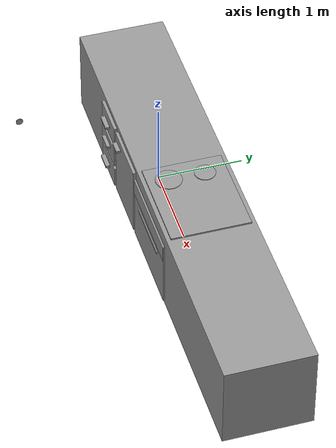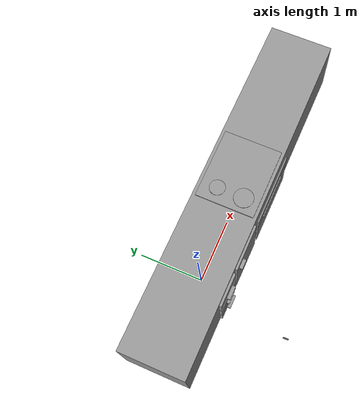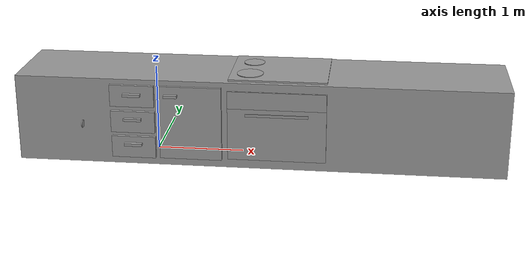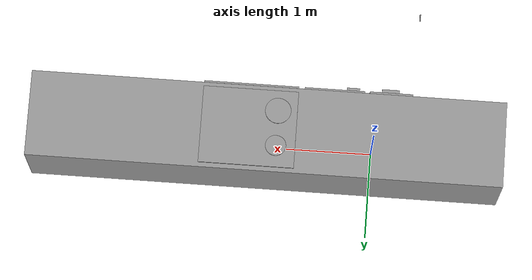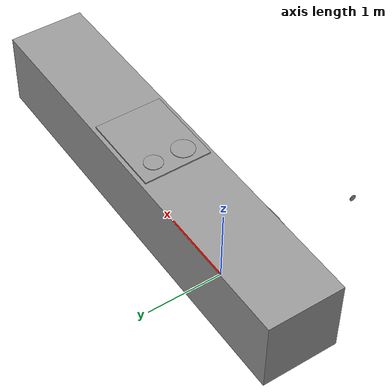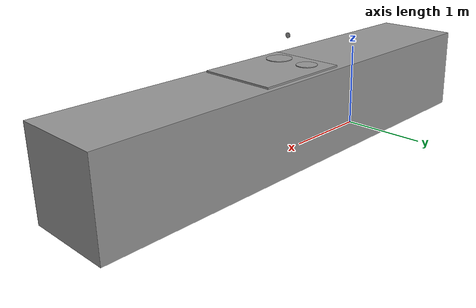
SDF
<sdf version="1.7">
 <model name="my_kitchen">
  <link name="link">
   <inertial>
    <mass>1</mass>
    <inertia>
     <ixx>0.166667</ixx>
     <ixy>0</ixy>
     <ixz>0</ixz>
     <iyy>0.166667</iyy>
     <iyz>0</iyz>
     <izz>0.166667</izz>
    </inertia>
   </inertial>
   <pose>1.23923 -0.000128 0 0 -0 0</pose>
   <visual name="visual">
    <geometry><box><size>5.5 1 1</size></box></geometry>
    <material>
     <script><name>Gazebo/Grey</name><uri>file://media/materials/scripts/gazebo.material</uri></script>
     <shader type="pixel"><normal_map>__default__</normal_map></shader>
     <ambient>0.8 0.8 0.8 1</ambient>
     <diffuse>0.65 0.65 0.65 1</diffuse>
     <specular>0.01 0.01 0.01 1</specular>
     <emissive>0 0 0 1</emissive>
    </material>
    <pose>0 0 0.5 0 -0 0</pose>
   </visual>
   <collision name="collision">
    <pose>0 0 0.5 0 -0 0</pose>
    <geometry><box><size>5.5 1 1</size></box></geometry>
    <surface>
     <friction>
      <ode><mu>1</mu><mu2>1</mu2><fdir1>0 0 0</fdir1><slip1>0</slip1><slip2>0</slip2></ode>
      <torsional>
       <coefficient>1</coefficient>
       <patch_radius>0</patch_radius>
       <surface_radius>0</surface_radius>
       <use_patch_radius>1</use_patch_radius>
       <ode><slip>0</slip></ode>
      </torsional>
     </friction>
     <bounce><restitution_coefficient>0</restitution_coefficient><threshold>1e+06</threshold></bounce>
     <contact>
      <collide_without_contact>0</collide_without_contact>
      <collide_without_contact_bitmask>1</collide_without_contact_bitmask>
      <collide_bitmask>1</collide_bitmask>
      <ode>
       <soft_cfm>0</soft_cfm>
       <soft_erp>0.2</soft_erp>
       <kp>1e+13</kp>
       <kd>1</kd>
       <max_vel>0.01</max_vel>
       <min_depth>0</min_depth>
      </ode>
      <bullet>
       <split_impulse>1</split_impulse>
       <split_impulse_penetration_threshold>-0.01</split_impulse_penetration_threshold>
       <soft_cfm>0</soft_cfm>
       <soft_erp>0.2</soft_erp>
       <kp>1e+13</kp>
       <kd>1</kd>
      </bullet>
     </contact>
    </surface>
   </collision>
  </link>
  <link name="link_0_0">
   <inertial>
    <mass>1</mass>
    <inertia><ixx>0.145833</ixx><ixy>0</ixy><ixz>0</ixz><iyy>0.145833</iyy><iyz>0</iyz><izz>0.125</izz></inertia>
   </inertial>
   <pose>1.11587 -0.213264 1.02593 0 -0 0</pose>
   <gravity>0</gravity>
   <visual name="visual">
    <geometry><cylinder><radius>0.15</radius><length>0.01</length></cylinder></geometry>
    <material>
     <lighting>1</lighting>
     <script><uri>file://media/materials/scripts/gazebo.material</uri><name>Gazebo/Grey</name></script>
     <shader type="pixel"><normal_map>__default__</normal_map></shader>
     <ambient>0.3 0.3 0.3 1</ambient>
     <diffuse>0.3 0.3 0.3 1</diffuse>
     <specular>0.01 0.01 0.01 1</specular>
     <emissive>0 0 0 1</emissive>
    </material>
   </visual>
   <collision name="collision">
    <geometry><cylinder><radius>0.15</radius><length>0.01</length></cylinder></geometry>
    <surface>
     <friction>
      <ode><mu>1</mu><mu2>1</mu2><fdir1>0 0 0</fdir1><slip1>0</slip1><slip2>0</slip2></ode>
      <torsional>
       <coefficient>1</coefficient>
       <patch_radius>0</patch_radius>
       <surface_radius>0</surface_radius>
       <use_patch_radius>1</use_patch_radius>
       <ode><slip>0</slip></ode>
      </torsional>
     </friction>
     <bounce><restitution_coefficient>0</restitution_coefficient><threshold>1e+06</threshold></bounce>
     <contact>
      <collide_without_contact>0</collide_without_contact>
      <collide_without_contact_bitmask>1</collide_without_contact_bitmask>
      <collide_bitmask>1</collide_bitmask>
      <ode>
       <soft_cfm>0</soft_cfm>
       <soft_erp>0.2</soft_erp>
       <kp>1e+13</kp>
       <kd>1</kd>
       <max_vel>0.01</max_vel>
       <min_depth>0</min_depth>
      </ode>
      <bullet>
       <split_impulse>1</split_impulse>
       <split_impulse_penetration_threshold>-0.01</split_impulse_penetration_threshold>
       <soft_cfm>0</soft_cfm>
       <soft_erp>0.2</soft_erp>
       <kp>1e+13</kp>
       <kd>1</kd>
      </bullet>
     </contact>
    </surface>
   </collision>
  </link>
  <link name="link_0_0_clone">
   <inertial>
    <mass>1</mass>
    <inertia><ixx>0.145833</ixx><ixy>0</ixy><ixz>0</ixz><iyy>0.145833</iyy><iyz>0</iyz><izz>0.125</izz></inertia>
   </inertial>
   <pose>1.11788 0.197131 1.02593 0 -0 0</pose>
   <gravity>0</gravity>
   <visual name="visual">
    <geometry><cylinder><radius>0.12</radius><length>0.01</length></cylinder></geometry>
    <material>
     <lighting>1</lighting>
     <script><uri>file://media/materials/scripts/gazebo.material</uri><name>Gazebo/Grey</name></script>
     <shader type="pixel"><normal_map>__default__</normal_map></shader>
     <ambient>0.3 0.3 0.3 1</ambient>
     <diffuse>0.3 0.3 0.3 1</diffuse>
     <specular>0.01 0.01 0.01 1</specular>
     <emissive>0 0 0 1</emissive>
    </material>
   </visual>
   <collision name="collision">
    <geometry><cylinder><radius>0.12</radius><length>0.01</length></cylinder></geometry>
    <surface>
     <friction>
      <ode><mu>1</mu><mu2>1</mu2><fdir1>0 0 0</fdir1><slip1>0</slip1><slip2>0</slip2></ode>
      <torsional>
       <coefficient>1</coefficient>
       <patch_radius>0</patch_radius>
       <surface_radius>0</surface_radius>
       <use_patch_radius>1</use_patch_radius>
       <ode><slip>0</slip></ode>
      </torsional>
     </friction>
     <bounce><restitution_coefficient>0</restitution_coefficient><threshold>1e+06</threshold></bounce>
     <contact>
      <collide_without_contact>0</collide_without_contact>
      <collide_without_contact_bitmask>1</collide_without_contact_bitmask>
      <collide_bitmask>1</collide_bitmask>
      <ode>
       <soft_cfm>0</soft_cfm>
       <soft_erp>0.2</soft_erp>
       <kp>1e+13</kp>
       <kd>1</kd>
       <max_vel>0.01</max_vel>
       <min_depth>0</min_depth>
      </ode>
      <bullet>
       <split_impulse>1</split_impulse>
       <split_impulse_penetration_threshold>-0.01</split_impulse_penetration_threshold>
       <soft_cfm>0</soft_cfm>
       <soft_erp>0.2</soft_erp>
       <kp>1e+13</kp>
       <kd>1</kd>
      </bullet>
     </contact>
    </surface>
   </collision>
  </link>
  <link name="link_0_clone_0">
   <inertial>
    <mass>1</mass>
    <inertia><ixx>0.145833</ixx><ixy>0</ixy><ixz>0</ixz><iyy>0.145833</iyy><iyz>0</iyz><izz>0.125</izz></inertia>
   </inertial>
   <pose>-0.459347 -1.48795 0.840731 0 -0 0</pose>
   <visual name="visual">
    <pose>0 0 0 0 1.5707 0</pose>
    <geometry><cylinder><radius>0.04</radius><length>0.01</length></cylinder></geometry>
    <material>
     <lighting>1</lighting>
     <script><uri>file://media/materials/scripts/gazebo.material</uri><name>Gazebo/Grey</name></script>
     <shader type="pixel"><normal_map>__default__</normal_map></shader>
     <ambient>0.9 0.9 0.9 1</ambient>
     <diffuse>0.9 0.9 0.9 1</diffuse>
     <specular>0.01 0.01 0.01 1</specular>
     <emissive>0 0 0 1</emissive>
    </material>
   </visual>
   <collision name="collision">
    <pose>0 0 0 0 1.5707 0</pose>
    <geometry><cylinder><radius>0.04</radius><length>0.01</length></cylinder></geometry>
    <surface>
     <friction>
      <ode><mu>1</mu><mu2>1</mu2><fdir1>0 0 0</fdir1><slip1>0</slip1><slip2>0</slip2></ode>
      <torsional>
       <coefficient>1</coefficient>
       <patch_radius>0</patch_radius>
       <surface_radius>0</surface_radius>
       <use_patch_radius>1</use_patch_radius>
       <ode><slip>0</slip></ode>
      </torsional>
     </friction>
     <bounce><restitution_coefficient>0</restitution_coefficient><threshold>1e+06</threshold></bounce>
     <contact>
      <collide_without_contact>0</collide_without_contact>
      <collide_without_contact_bitmask>1</collide_without_contact_bitmask>
      <collide_bitmask>1</collide_bitmask>
      <ode>
       <soft_cfm>0</soft_cfm>
       <soft_erp>0.2</soft_erp>
       <kp>1e+13</kp>
       <kd>1</kd>
       <max_vel>0.01</max_vel>
       <min_depth>0</min_depth>
      </ode>
      <bullet>
       <split_impulse>1</split_impulse>
       <split_impulse_penetration_threshold>-0.01</split_impulse_penetration_threshold>
       <soft_cfm>0</soft_cfm>
       <soft_erp>0.2</soft_erp>
       <kp>1e+13</kp>
       <kd>1</kd>
      </bullet>
     </contact>
    </surface>
   </collision>
  </link>
  <link name="link_clone_0">
   <inertial>
    <mass>1</mass>
    <inertia>
     <ixx>0.166667</ixx>
     <ixy>0</ixy>
     <ixz>0</ixz>
     <iyy>0.166667</iyy>
     <iyz>0</iyz>
     <izz>0.166667</izz>
    </inertia>
   </inertial>
   <pose>1.44437 -0.002505 0.513121 0 -0 0</pose>
   <gravity>0</gravity>
   <visual name="visual">
    <geometry><box><size>1.1 0.9 0.02</size></box></geometry>
    <material>
     <script><name>Gazebo/Grey</name><uri>file://media/materials/scripts/gazebo.material</uri></script>
     <shader type="pixel"><normal_map>__default__</normal_map></shader>
     <ambient>0.2 0.2 0.2 1</ambient>
     <diffuse>0.2 0.2 0.2 1</diffuse>
     <specular>0.01 0.01 0.01 1</specular>
     <emissive>0 0 0 1</emissive>
    </material>
    <pose>0 0 0.5 0 -0 0</pose>
   </visual>
   <collision name="collision">
    <pose>0 0 0.5 0 -0 0</pose>
    <geometry><box><size>1.1 0.9 0.02</size></box></geometry>
    <surface>
     <friction>
      <ode><mu>1</mu><mu2>1</mu2><fdir1>0 0 0</fdir1><slip1>0</slip1><slip2>0</slip2></ode>
      <torsional>
       <coefficient>1</coefficient>
       <patch_radius>0</patch_radius>
       <surface_radius>0</surface_radius>
       <use_patch_radius>1</use_patch_radius>
       <ode><slip>0</slip></ode>
      </torsional>
     </friction>
     <bounce><restitution_coefficient>0</restitution_coefficient><threshold>1e+06</threshold></bounce>
     <contact>
      <collide_without_contact>0</collide_without_contact>
      <collide_without_contact_bitmask>1</collide_without_contact_bitmask>
      <collide_bitmask>1</collide_bitmask>
      <ode>
       <soft_cfm>0</soft_cfm>
       <soft_erp>0.2</soft_erp>
       <kp>1e+13</kp>
       <kd>1</kd>
       <max_vel>0.01</max_vel>
       <min_depth>0</min_depth>
      </ode>
      <bullet>
       <split_impulse>1</split_impulse>
       <split_impulse_penetration_threshold>-0.01</split_impulse_penetration_threshold>
       <soft_cfm>0</soft_cfm>
       <soft_erp>0.2</soft_erp>
       <kp>1e+13</kp>
       <kd>1</kd>
      </bullet>
     </contact>
    </surface>
   </collision>
  </link>
  <link name="link_clone_0_clone_0">
   <inertial>
    <mass>1</mass>
    <inertia>
     <ixx>0.166667</ixx>
     <ixy>0</ixy>
     <ixz>0</ixz>
     <iyy>0.166667</iyy>
     <iyz>0</iyz>
     <izz>0.166667</izz>
    </inertia>
   </inertial>
   <pose>1.44476 -0.529129 0.013848 0 -0 0</pose>
   <visual name="visual">
    <geometry><box><size>1.1 0.8 0.02</size></box></geometry>
    <material>
     <script><name>Gazebo/Grey</name><uri>file://media/materials/scripts/gazebo.material</uri></script>
     <shader type="pixel"><normal_map>__default__</normal_map></shader>
     <ambient>0.2 0.2 0.2 1</ambient>
     <diffuse>0.2 0.2 0.2 1</diffuse>
     <specular>0.01 0.01 0.01 1</specular>
     <emissive>0 0 0 1</emissive>
    </material>
    <pose>0 0 0.5 1.5707 -0 0</pose>
   </visual>
   <collision name="collision">
    <pose>0 0 0.5 1.5707 -0 0</pose>
    <geometry><box><size>1.1 0.8 0.02</size></box></geometry>
    <surface>
     <friction>
      <ode><mu>1</mu><mu2>1</mu2><fdir1>0 0 0</fdir1><slip1>0</slip1><slip2>0</slip2></ode>
      <torsional>
       <coefficient>1</coefficient>
       <patch_radius>0</patch_radius>
       <surface_radius>0</surface_radius>
       <use_patch_radius>1</use_patch_radius>
       <ode><slip>0</slip></ode>
      </torsional>
     </friction>
     <bounce><restitution_coefficient>0</restitution_coefficient><threshold>1e+06</threshold></bounce>
     <contact>
      <collide_without_contact>0</collide_without_contact>
      <collide_without_contact_bitmask>1</collide_without_contact_bitmask>
      <collide_bitmask>1</collide_bitmask>
      <ode>
       <soft_cfm>0</soft_cfm>
       <soft_erp>0.2</soft_erp>
       <kp>1e+13</kp>
       <kd>1</kd>
       <max_vel>0.01</max_vel>
       <min_depth>0</min_depth>
      </ode>
      <bullet>
       <split_impulse>1</split_impulse>
       <split_impulse_penetration_threshold>-0.01</split_impulse_penetration_threshold>
       <soft_cfm>0</soft_cfm>
       <soft_erp>0.2</soft_erp>
       <kp>1e+13</kp>
       <kd>1</kd>
      </bullet>
     </contact>
    </surface>
   </collision>
  </link>
  <link name="link_clone_0_clone_0_clone">
   <inertial>
    <mass>1</mass>
    <inertia>
     <ixx>0.166667</ixx>
     <ixy>0</ixy>
     <ixz>0</ixz>
     <iyy>0.166667</iyy>
     <iyz>0</iyz>
     <izz>0.166667</izz>
    </inertia>
   </inertial>
   <pose>1.44317 -0.53222 0.313912 0 -0 0</pose>
   <visual name="visual">
    <geometry><box><size>1.1 0.2 0.02</size></box></geometry>
    <material>
     <script><name>Gazebo/Grey</name><uri>file://media/materials/scripts/gazebo.material</uri></script>
     <shader type="pixel"><normal_map>__default__</normal_map></shader>
     <ambient>0.4 0.4 0.4 1</ambient>
     <diffuse>0.4 0.4 0.4 1</diffuse>
     <specular>0.01 0.01 0.01 1</specular>
     <emissive>0 0 0 1</emissive>
    </material>
    <pose>0 0 0.5 1.5707 -0 0</pose>
   </visual>
   <collision name="collision">
    <pose>0 0 0.5 1.5707 -0 0</pose>
    <geometry><box><size>1.1 0.2 0.02</size></box></geometry>
    <surface>
     <friction>
      <ode><mu>1</mu><mu2>1</mu2><fdir1>0 0 0</fdir1><slip1>0</slip1><slip2>0</slip2></ode>
      <torsional>
       <coefficient>1</coefficient>
       <patch_radius>0</patch_radius>
       <surface_radius>0</surface_radius>
       <use_patch_radius>1</use_patch_radius>
       <ode><slip>0</slip></ode>
      </torsional>
     </friction>
     <bounce><restitution_coefficient>0</restitution_coefficient><threshold>1e+06</threshold></bounce>
     <contact>
      <collide_without_contact>0</collide_without_contact>
      <collide_without_contact_bitmask>1</collide_without_contact_bitmask>
      <collide_bitmask>1</collide_bitmask>
      <ode>
       <soft_cfm>0</soft_cfm>
       <soft_erp>0.2</soft_erp>
       <kp>1e+13</kp>
       <kd>1</kd>
       <max_vel>0.01</max_vel>
       <min_depth>0</min_depth>
      </ode>
      <bullet>
       <split_impulse>1</split_impulse>
       <split_impulse_penetration_threshold>-0.01</split_impulse_penetration_threshold>
       <soft_cfm>0</soft_cfm>
       <soft_erp>0.2</soft_erp>
       <kp>1e+13</kp>
       <kd>1</kd>
      </bullet>
     </contact>
    </surface>
   </collision>
  </link>
  <link name="link_clone_0_clone_0_clone_clone">
   <inertial>
    <mass>1</mass>
    <inertia>
     <ixx>0.166667</ixx>
     <ixy>0</ixy>
     <ixz>0</ixz>
     <iyy>0.166667</iyy>
     <iyz>0</iyz>
     <izz>0.166667</izz>
    </inertia>
   </inertial>
   <pose>1.44437 -0.543751 0.146791 0 -0 0</pose>
   <gravity>0</gravity>
   <visual name="visual">
    <geometry><box><size>0.7 0.03 0.02</size></box></geometry>
    <material>
     <script><name>Gazebo/Grey</name><uri>file://media/materials/scripts/gazebo.material</uri></script>
     <shader type="pixel"><normal_map>__default__</normal_map></shader>
     <ambient>0.9 0.9 0.9 1</ambient>
     <diffuse>0.9 0.9 0.9 1</diffuse>
     <specular>0.01 0.01 0.01 1</specular>
     <emissive>0 0 0 1</emissive>
    </material>
    <pose>0 0 0.5 1.5707 -0 0</pose>
   </visual>
   <collision name="collision">
    <pose>0 0 0.5 1.5707 -0 0</pose>
    <geometry><box><size>0.7 0.03 0.02</size></box></geometry>
    <surface>
     <friction>
      <ode><mu>1</mu><mu2>1</mu2><fdir1>0 0 0</fdir1><slip1>0</slip1><slip2>0</slip2></ode>
      <torsional>
       <coefficient>1</coefficient>
       <patch_radius>0</patch_radius>
       <surface_radius>0</surface_radius>
       <use_patch_radius>1</use_patch_radius>
       <ode><slip>0</slip></ode>
      </torsional>
     </friction>
     <bounce><restitution_coefficient>0</restitution_coefficient><threshold>1e+06</threshold></bounce>
     <contact>
      <collide_without_contact>0</collide_without_contact>
      <collide_without_contact_bitmask>1</collide_without_contact_bitmask>
      <collide_bitmask>1</collide_bitmask>
      <ode>
       <soft_cfm>0</soft_cfm>
       <soft_erp>0.2</soft_erp>
       <kp>1e+13</kp>
       <kd>1</kd>
       <max_vel>0.01</max_vel>
       <min_depth>0</min_depth>
      </ode>
      <bullet>
       <split_impulse>1</split_impulse>
       <split_impulse_penetration_threshold>-0.01</split_impulse_penetration_threshold>
       <soft_cfm>0</soft_cfm>
       <soft_erp>0.2</soft_erp>
       <kp>1e+13</kp>
       <kd>1</kd>
      </bullet>
     </contact>
    </surface>
   </collision>
  </link>
  <link name="link_clone_clone_clone_0_clone_clone_clone_0_clone_clone_clone_0_clone_0">
   <inertial>
    <mass>1</mass>
    <inertia>
     <ixx>0.166667</ixx>
     <ixy>0</ixy>
     <ixz>0</ixz>
     <iyy>0.166667</iyy>
     <iyz>0</iyz>
     <izz>0.166667</izz>
    </inertia>
   </inertial>
   <pose>-0.174147 -0.517268 0.010923 0 -0 0</pose>
   <gravity>0</gravity>
   <visual name="visual">
    <geometry><box><size>0.05 0.5 0.25</size></box></geometry>
    <material>
     <script><name>Gazebo/Grey</name><uri>file://media/materials/scripts/gazebo.material</uri></script>
     <shader type="pixel"><normal_map>__default__</normal_map></shader>
     <ambient>0.4 0.4 0.4 1</ambient>
     <diffuse>0.4 0.4 0.4 1</diffuse>
     <specular>0.01 0.01 0.01 1</specular>
     <emissive>0 0 0 1</emissive>
    </material>
    <pose>0 0 0.5 0 -0 1.5707</pose>
   </visual>
   <collision name="collision">
    <pose>0 0 0.5 0 -0 1.5707</pose>
    <geometry><box><size>0.05 0.5 0.25</size></box></geometry>
    <surface>
     <friction>
      <ode><mu>1</mu><mu2>1</mu2><fdir1>0 0 0</fdir1><slip1>0</slip1><slip2>0</slip2></ode>
      <torsional>
       <coefficient>1</coefficient>
       <patch_radius>0</patch_radius>
       <surface_radius>0</surface_radius>
       <use_patch_radius>1</use_patch_radius>
       <ode><slip>0</slip></ode>
      </torsional>
     </friction>
     <bounce><restitution_coefficient>0</restitution_coefficient><threshold>1e+06</threshold></bounce>
     <contact>
      <collide_without_contact>0</collide_without_contact>
      <collide_without_contact_bitmask>1</collide_without_contact_bitmask>
      <collide_bitmask>1</collide_bitmask>
      <ode>
       <soft_cfm>0</soft_cfm>
       <soft_erp>0.2</soft_erp>
       <kp>1e+13</kp>
       <kd>1</kd>
       <max_vel>0.01</max_vel>
       <min_depth>0</min_depth>
      </ode>
      <bullet>
       <split_impulse>1</split_impulse>
       <split_impulse_penetration_threshold>-0.01</split_impulse_penetration_threshold>
       <soft_cfm>0</soft_cfm>
       <soft_erp>0.2</soft_erp>
       <kp>1e+13</kp>
       <kd>1</kd>
      </bullet>
     </contact>
    </surface>
   </collision>
  </link>
  <link name="link_clone_clone_clone_0_clone_clone_clone_0_clone_clone_clone_0_clone_0_clone">
   <inertial>
    <mass>1</mass>
    <inertia>
     <ixx>0.166667</ixx>
     <ixy>0</ixy>
     <ixz>0</ixz>
     <iyy>0.166667</iyy>
     <iyz>0</iyz>
     <izz>0.166667</izz>
    </inertia>
   </inertial>
   <pose>-0.172613 -0.514864 -0.287733 0 -0 0</pose>
   <visual name="visual">
    <geometry><box><size>0.05 0.5 0.25</size></box></geometry>
    <material>
     <script><name>Gazebo/Grey</name><uri>file://media/materials/scripts/gazebo.material</uri></script>
     <shader type="pixel"><normal_map>__default__</normal_map></shader>
     <ambient>0.4 0.4 0.4 1</ambient>
     <diffuse>0.4 0.4 0.4 1</diffuse>
     <specular>0.01 0.01 0.01 1</specular>
     <emissive>0 0 0 1</emissive>
    </material>
    <pose>0 0 0.5 0 -0 1.5707</pose>
   </visual>
   <collision name="collision">
    <pose>0 0 0.5 0 -0 1.5707</pose>
    <geometry><box><size>0.05 0.5 0.25</size></box></geometry>
    <surface>
     <friction>
      <ode><mu>1</mu><mu2>1</mu2><fdir1>0 0 0</fdir1><slip1>0</slip1><slip2>0</slip2></ode>
      <torsional>
       <coefficient>1</coefficient>
       <patch_radius>0</patch_radius>
       <surface_radius>0</surface_radius>
       <use_patch_radius>1</use_patch_radius>
       <ode><slip>0</slip></ode>
      </torsional>
     </friction>
     <bounce><restitution_coefficient>0</restitution_coefficient><threshold>1e+06</threshold></bounce>
     <contact>
      <collide_without_contact>0</collide_without_contact>
      <collide_without_contact_bitmask>1</collide_without_contact_bitmask>
      <collide_bitmask>1</collide_bitmask>
      <ode>
       <soft_cfm>0</soft_cfm>
       <soft_erp>0.2</soft_erp>
       <kp>1e+13</kp>
       <kd>1</kd>
       <max_vel>0.01</max_vel>
       <min_depth>0</min_depth>
      </ode>
      <bullet>
       <split_impulse>1</split_impulse>
       <split_impulse_penetration_threshold>-0.01</split_impulse_penetration_threshold>
       <soft_cfm>0</soft_cfm>
       <soft_erp>0.2</soft_erp>
       <kp>1e+13</kp>
       <kd>1</kd>
      </bullet>
     </contact>
    </surface>
   </collision>
  </link>
  <link name="link_clone_clone_clone_0_clone_clone_clone_0_clone_clone_clone_0_clone_0_clone_0">
   <inertial>
    <mass>1</mass>
    <inertia>
     <ixx>0.166667</ixx>
     <ixy>0</ixy>
     <ixz>0</ixz>
     <iyy>0.166667</iyy>
     <iyz>0</iyz>
     <izz>0.166667</izz>
    </inertia>
   </inertial>
   <pose>-0.177001 -0.511923 0.314755 0 -0 0</pose>
   <visual name="visual">
    <geometry><box><size>0.05 0.5 0.25</size></box></geometry>
    <material>
     <script><name>Gazebo/Grey</name><uri>file://media/materials/scripts/gazebo.material</uri></script>
     <shader type="pixel"><normal_map>__default__</normal_map></shader>
     <ambient>0.4 0.4 0.4 1</ambient>
     <diffuse>0.4 0.4 0.4 1</diffuse>
     <specular>0.01 0.01 0.01 1</specular>
     <emissive>0 0 0 1</emissive>
    </material>
    <pose>0 0 0.5 0 -0 1.5707</pose>
   </visual>
   <collision name="collision">
    <pose>0 0 0.5 0 -0 1.5707</pose>
    <geometry><box><size>0.05 0.5 0.25</size></box></geometry>
    <surface>
     <friction>
      <ode><mu>1</mu><mu2>1</mu2><fdir1>0 0 0</fdir1><slip1>0</slip1><slip2>0</slip2></ode>
      <torsional>
       <coefficient>1</coefficient>
       <patch_radius>0</patch_radius>
       <surface_radius>0</surface_radius>
       <use_patch_radius>1</use_patch_radius>
       <ode><slip>0</slip></ode>
      </torsional>
     </friction>
     <bounce><restitution_coefficient>0</restitution_coefficient><threshold>1e+06</threshold></bounce>
     <contact>
      <collide_without_contact>0</collide_without_contact>
      <collide_without_contact_bitmask>1</collide_without_contact_bitmask>
      <collide_bitmask>1</collide_bitmask>
      <ode>
       <soft_cfm>0</soft_cfm>
       <soft_erp>0.2</soft_erp>
       <kp>1e+13</kp>
       <kd>1</kd>
       <max_vel>0.01</max_vel>
       <min_depth>0</min_depth>
      </ode>
      <bullet>
       <split_impulse>1</split_impulse>
       <split_impulse_penetration_threshold>-0.01</split_impulse_penetration_threshold>
       <soft_cfm>0</soft_cfm>
       <soft_erp>0.2</soft_erp>
       <kp>1e+13</kp>
       <kd>1</kd>
      </bullet>
     </contact>
    </surface>
   </collision>
  </link>
  <link name="link_clone_clone_clone_0_clone_clone_clone_0_clone_clone_clone_clone">
   <inertial>
    <mass>1</mass>
    <inertia>
     <ixx>0.166667</ixx>
     <ixy>0</ixy>
     <ixz>0</ixz>
     <iyy>0.166667</iyy>
     <iyz>0</iyz>
     <izz>0.166667</izz>
    </inertia>
   </inertial>
   <pose>0.477669 -0.509689 0.016041 0 -0 0</pose>
   <gravity>0</gravity>
   <visual name="visual">
    <geometry><box><size>0.05 0.7 0.85</size></box></geometry>
    <material>
     <script><name>Gazebo/Grey</name><uri>file://media/materials/scripts/gazebo.material</uri></script>
     <shader type="pixel"><normal_map>__default__</normal_map></shader>
     <ambient>0.4 0.4 0.4 1</ambient>
     <diffuse>0.4 0.4 0.4 1</diffuse>
     <specular>0.01 0.01 0.01 1</specular>
     <emissive>0 0 0 1</emissive>
    </material>
    <pose>0 0 0.5 0 -0 1.5707</pose>
   </visual>
   <collision name="collision">
    <pose>0 0 0.5 0 -0 1.5707</pose>
    <geometry><box><size>0.05 0.7 0.85</size></box></geometry>
    <surface>
     <friction>
      <ode><mu>1</mu><mu2>1</mu2><fdir1>0 0 0</fdir1><slip1>0</slip1><slip2>0</slip2></ode>
      <torsional>
       <coefficient>1</coefficient>
       <patch_radius>0</patch_radius>
       <surface_radius>0</surface_radius>
       <use_patch_radius>1</use_patch_radius>
       <ode><slip>0</slip></ode>
      </torsional>
     </friction>
     <bounce><restitution_coefficient>0</restitution_coefficient><threshold>1e+06</threshold></bounce>
     <contact>
      <collide_without_contact>0</collide_without_contact>
      <collide_without_contact_bitmask>1</collide_without_contact_bitmask>
      <collide_bitmask>1</collide_bitmask>
      <ode>
       <soft_cfm>0</soft_cfm>
       <soft_erp>0.2</soft_erp>
       <kp>1e+13</kp>
       <kd>1</kd>
       <max_vel>0.01</max_vel>
       <min_depth>0</min_depth>
      </ode>
      <bullet>
       <split_impulse>1</split_impulse>
       <split_impulse_penetration_threshold>-0.01</split_impulse_penetration_threshold>
       <soft_cfm>0</soft_cfm>
       <soft_erp>0.2</soft_erp>
       <kp>1e+13</kp>
       <kd>1</kd>
      </bullet>
     </contact>
    </surface>
   </collision>
  </link>
  <link name="link_clone_clone_clone_0_clone_clone_clone_clone_1_clone_0">
   <inertial>
    <mass>1</mass>
    <inertia>
     <ixx>0.166667</ixx>
     <ixy>0</ixy>
     <ixz>0</ixz>
     <iyy>0.166667</iyy>
     <iyz>0</iyz>
     <izz>0.166667</izz>
    </inertia>
   </inertial>
   <pose>0.264715 -0.561956 0.338029 0 -0 0</pose>
   <gravity>0</gravity>
   <visual name="visual">
    <geometry><box><size>0.05 0.15 0.03</size></box></geometry>
    <material>
     <script><name>Gazebo/Grey</name><uri>file://media/materials/scripts/gazebo.material</uri></script>
     <shader type="pixel"><normal_map>__default__</normal_map></shader>
     <ambient>0.9 0.9 0.9 1</ambient>
     <diffuse>0.8 0.8 0.8 1</diffuse>
     <specular>0.01 0.01 0.01 1</specular>
     <emissive>0 0 0 1</emissive>
    </material>
    <pose>0 0 0.5 0 -0 1.5707</pose>
   </visual>
   <collision name="collision">
    <pose>0 0 0.5 0 -0 1.5707</pose>
    <geometry><box><size>0.05 0.15 0.03</size></box></geometry>
    <surface>
     <friction>
      <ode><mu>1</mu><mu2>1</mu2><fdir1>0 0 0</fdir1><slip1>0</slip1><slip2>0</slip2></ode>
      <torsional>
       <coefficient>1</coefficient>
       <patch_radius>0</patch_radius>
       <surface_radius>0</surface_radius>
       <use_patch_radius>1</use_patch_radius>
       <ode><slip>0</slip></ode>
      </torsional>
     </friction>
     <bounce><restitution_coefficient>0</restitution_coefficient><threshold>1e+06</threshold></bounce>
     <contact>
      <collide_without_contact>0</collide_without_contact>
      <collide_without_contact_bitmask>1</collide_without_contact_bitmask>
      <collide_bitmask>1</collide_bitmask>
      <ode>
       <soft_cfm>0</soft_cfm>
       <soft_erp>0.2</soft_erp>
       <kp>1e+13</kp>
       <kd>1</kd>
       <max_vel>0.01</max_vel>
       <min_depth>0</min_depth>
      </ode>
      <bullet>
       <split_impulse>1</split_impulse>
       <split_impulse_penetration_threshold>-0.01</split_impulse_penetration_threshold>
       <soft_cfm>0</soft_cfm>
       <soft_erp>0.2</soft_erp>
       <kp>1e+13</kp>
       <kd>1</kd>
      </bullet>
     </contact>
    </surface>
   </collision>
  </link>
  <link name="link_clone_clone_clone_0_clone_clone_clone_clone_1_clone_0_clone">
   <inertial>
    <mass>1</mass>
    <inertia>
     <ixx>0.166667</ixx>
     <ixy>0</ixy>
     <ixz>0</ixz>
     <iyy>0.166667</iyy>
     <iyz>0</iyz>
     <izz>0.166667</izz>
    </inertia>
   </inertial>
   <pose>-0.172178 -0.559644 0.047956 0 -0 0</pose>
   <gravity>0</gravity>
   <visual name="visual">
    <geometry><box><size>0.05 0.2 0.03</size></box></geometry>
    <material>
     <script><name>Gazebo/Grey</name><uri>file://media/materials/scripts/gazebo.material</uri></script>
     <shader type="pixel"><normal_map>__default__</normal_map></shader>
     <ambient>0.9 0.9 0.9 1</ambient>
     <diffuse>0.8 0.8 0.8 1</diffuse>
     <specular>0.01 0.01 0.01 1</specular>
     <emissive>0 0 0 1</emissive>
    </material>
    <pose>0 0 0.5 0 -0 1.5707</pose>
   </visual>
   <collision name="collision">
    <pose>0 0 0.5 0 -0 1.5707</pose>
    <geometry><box><size>0.05 0.2 0.03</size></box></geometry>
    <surface>
     <friction>
      <ode><mu>1</mu><mu2>1</mu2><fdir1>0 0 0</fdir1><slip1>0</slip1><slip2>0</slip2></ode>
      <torsional>
       <coefficient>1</coefficient>
       <patch_radius>0</patch_radius>
       <surface_radius>0</surface_radius>
       <use_patch_radius>1</use_patch_radius>
       <ode><slip>0</slip></ode>
      </torsional>
     </friction>
     <bounce><restitution_coefficient>0</restitution_coefficient><threshold>1e+06</threshold></bounce>
     <contact>
      <collide_without_contact>0</collide_without_contact>
      <collide_without_contact_bitmask>1</collide_without_contact_bitmask>
      <collide_bitmask>1</collide_bitmask>
      <ode>
       <soft_cfm>0</soft_cfm>
       <soft_erp>0.2</soft_erp>
       <kp>1e+13</kp>
       <kd>1</kd>
       <max_vel>0.01</max_vel>
       <min_depth>0</min_depth>
      </ode>
      <bullet>
       <split_impulse>1</split_impulse>
       <split_impulse_penetration_threshold>-0.01</split_impulse_penetration_threshold>
       <soft_cfm>0</soft_cfm>
       <soft_erp>0.2</soft_erp>
       <kp>1e+13</kp>
       <kd>1</kd>
      </bullet>
     </contact>
    </surface>
   </collision>
  </link>
  <link name="link_clone_clone_clone_0_clone_clone_clone_clone_1_clone_0_clone_clone">
   <inertial>
    <mass>1</mass>
    <inertia>
     <ixx>0.166667</ixx>
     <ixy>0</ixy>
     <ixz>0</ixz>
     <iyy>0.166667</iyy>
     <iyz>0</iyz>
     <izz>0.166667</izz>
    </inertia>
   </inertial>
   <pose>-0.171122 -0.571169 0.338029 0 -0 0</pose>
   <gravity>0</gravity>
   <visual name="visual">
    <geometry><box><size>0.05 0.2 0.03</size></box></geometry>
    <material>
     <script><name>Gazebo/Grey</name><uri>file://media/materials/scripts/gazebo.material</uri></script>
     <shader type="pixel"><normal_map>__default__</normal_map></shader>
     <ambient>0.9 0.9 0.9 1</ambient>
     <diffuse>0.8 0.8 0.8 1</diffuse>
     <specular>0.01 0.01 0.01 1</specular>
     <emissive>0 0 0 1</emissive>
    </material>
    <pose>0 0 0.5 0 -0 1.5707</pose>
   </visual>
   <collision name="collision">
    <pose>0 0 0.5 0 -0 1.5707</pose>
    <geometry><box><size>0.05 0.2 0.03</size></box></geometry>
    <surface>
     <friction>
      <ode><mu>1</mu><mu2>1</mu2><fdir1>0 0 0</fdir1><slip1>0</slip1><slip2>0</slip2></ode>
      <torsional>
       <coefficient>1</coefficient>
       <patch_radius>0</patch_radius>
       <surface_radius>0</surface_radius>
       <use_patch_radius>1</use_patch_radius>
       <ode><slip>0</slip></ode>
      </torsional>
     </friction>
     <bounce><restitution_coefficient>0</restitution_coefficient><threshold>1e+06</threshold></bounce>
     <contact>
      <collide_without_contact>0</collide_without_contact>
      <collide_without_contact_bitmask>1</collide_without_contact_bitmask>
      <collide_bitmask>1</collide_bitmask>
      <ode>
       <soft_cfm>0</soft_cfm>
       <soft_erp>0.2</soft_erp>
       <kp>1e+13</kp>
       <kd>1</kd>
       <max_vel>0.01</max_vel>
       <min_depth>0</min_depth>
      </ode>
      <bullet>
       <split_impulse>1</split_impulse>
       <split_impulse_penetration_threshold>-0.01</split_impulse_penetration_threshold>
       <soft_cfm>0</soft_cfm>
       <soft_erp>0.2</soft_erp>
       <kp>1e+13</kp>
       <kd>1</kd>
      </bullet>
     </contact>
    </surface>
   </collision>
  </link>
  <link name="link_clone_clone_clone_0_clone_clone_clone_clone_1_clone_0_clone_clone_clone">
   <inertial>
    <mass>1</mass>
    <inertia>
     <ixx>0.166667</ixx>
     <ixy>0</ixy>
     <ixz>0</ixz>
     <iyy>0.166667</iyy>
     <iyz>0</iyz>
     <izz>0.166667</izz>
    </inertia>
   </inertial>
   <pose>-0.169187 -0.575049 -0.243065 0 -0 0</pose>
   <gravity>0</gravity>
   <visual name="visual">
    <geometry><box><size>0.05 0.2 0.03</size></box></geometry>
    <material>
     <script><name>Gazebo/Grey</name><uri>file://media/materials/scripts/gazebo.material</uri></script>
     <shader type="pixel"><normal_map>__default__</normal_map></shader>
     <ambient>0.9 0.9 0.9 1</ambient>
     <diffuse>0.8 0.8 0.8 1</diffuse>
     <specular>0.01 0.01 0.01 1</specular>
     <emissive>0 0 0 1</emissive>
    </material>
    <pose>0 0 0.5 0 -0 1.5707</pose>
   </visual>
   <collision name="collision">
    <pose>0 0 0.5 0 -0 1.5707</pose>
    <geometry><box><size>0.05 0.2 0.03</size></box></geometry>
    <surface>
     <friction>
      <ode><mu>1</mu><mu2>1</mu2><fdir1>0 0 0</fdir1><slip1>0</slip1><slip2>0</slip2></ode>
      <torsional>
       <coefficient>1</coefficient>
       <patch_radius>0</patch_radius>
       <surface_radius>0</surface_radius>
       <use_patch_radius>1</use_patch_radius>
       <ode><slip>0</slip></ode>
      </torsional>
     </friction>
     <bounce><restitution_coefficient>0</restitution_coefficient><threshold>1e+06</threshold></bounce>
     <contact>
      <collide_without_contact>0</collide_without_contact>
      <collide_without_contact_bitmask>1</collide_without_contact_bitmask>
      <collide_bitmask>1</collide_bitmask>
      <ode>
       <soft_cfm>0</soft_cfm>
       <soft_erp>0.2</soft_erp>
       <kp>1e+13</kp>
       <kd>1</kd>
       <max_vel>0.01</max_vel>
       <min_depth>0</min_depth>
      </ode>
      <bullet>
       <split_impulse>1</split_impulse>
       <split_impulse_penetration_threshold>-0.01</split_impulse_penetration_threshold>
       <soft_cfm>0</soft_cfm>
       <soft_erp>0.2</soft_erp>
       <kp>1e+13</kp>
       <kd>1</kd>
      </bullet>
     </contact>
    </surface>
   </collision>
  </link>
  <static>1</static>
 </model>
</sdf>
